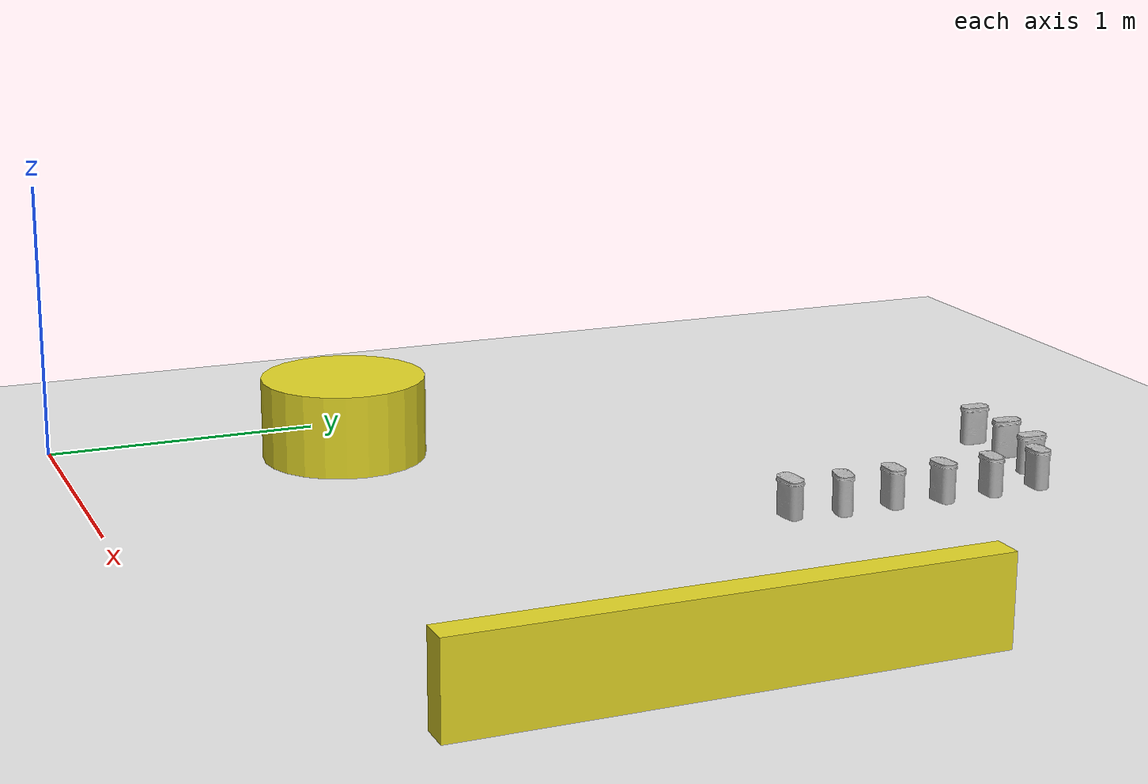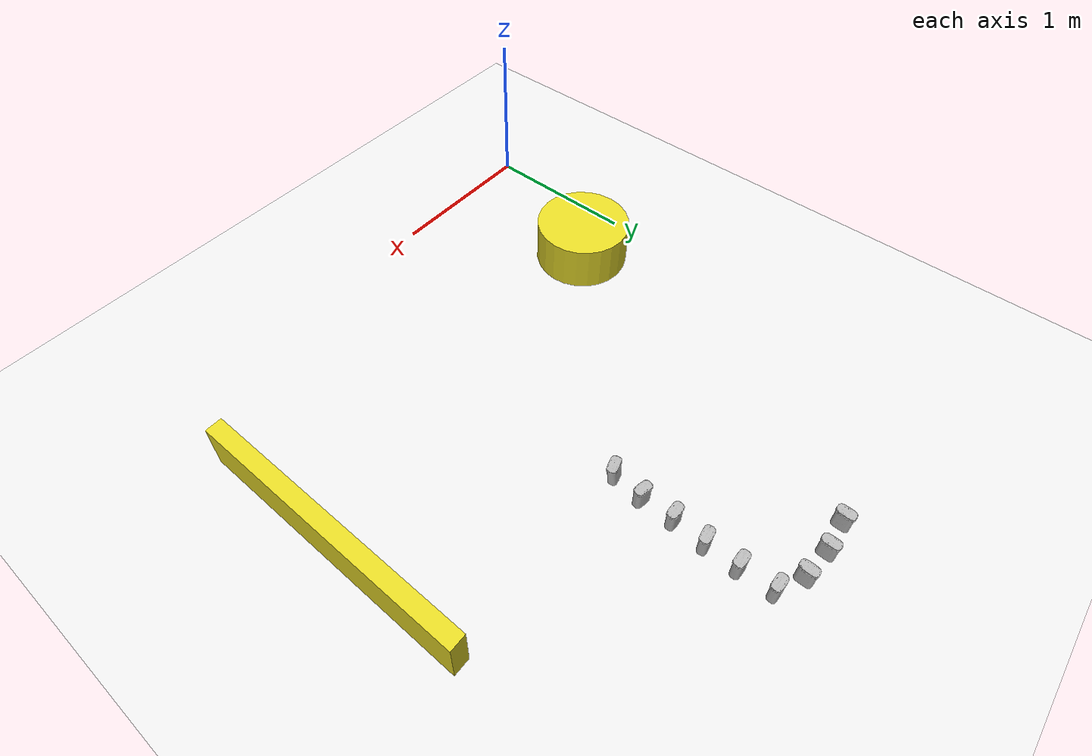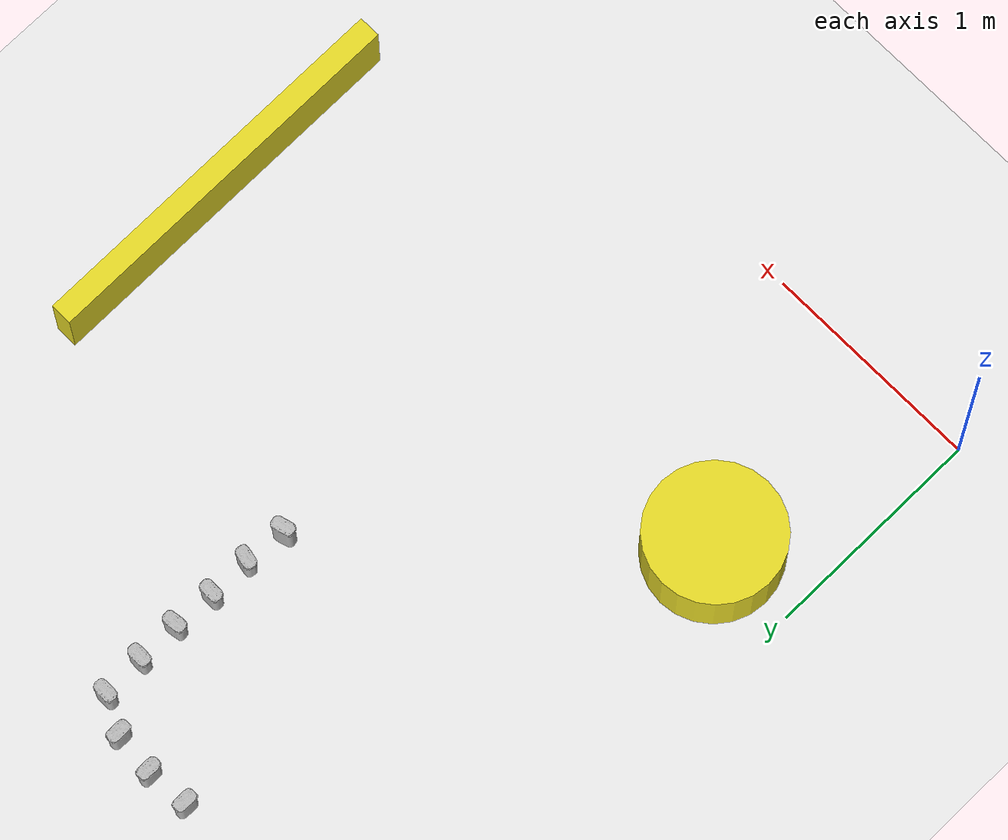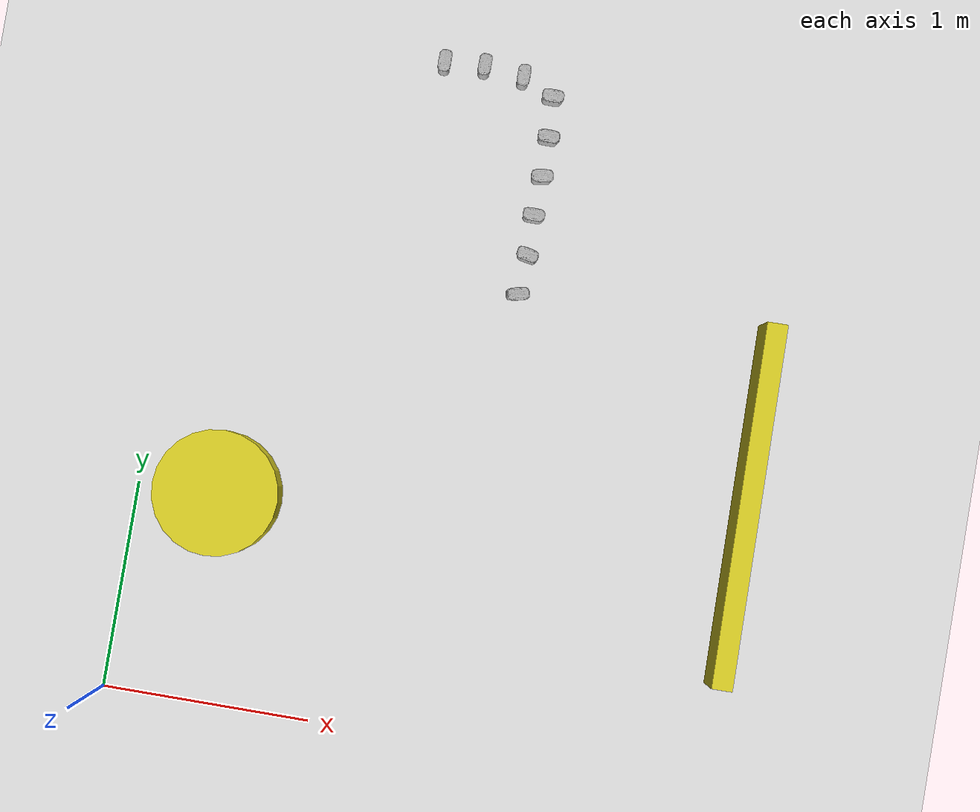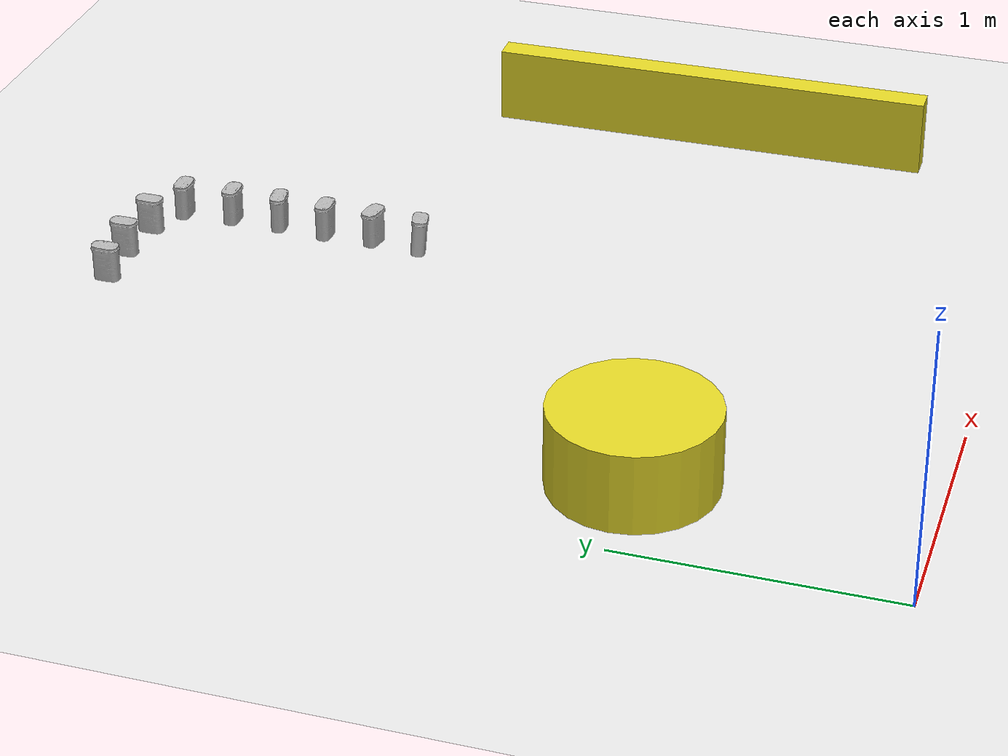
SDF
<sdf version="1.7">
 <world name="default">
  <model name="ground_plane">
   <static>1</static>
   <link name="link">
    <collision name="collision">
     <geometry><plane><normal>0 0 1</normal><size>20 20</size></plane></geometry>
     <surface>
      <contact><collide_bitmask>65535</collide_bitmask></contact>
      <friction><ode><mu>100</mu><mu2>50</mu2></ode></friction>
     </surface>
    </collision>
    <visual name="visual">
     <cast_shadows>0</cast_shadows>
     <geometry><plane><normal>0 0 1</normal><size>20 20</size></plane></geometry>
     <material>
      <script><uri>file://media/materials/scripts/gazebo.material</uri><name>Gazebo/White</name></script>
     </material>
    </visual>
   </link>
  </model>
  <gravity>0 0 -9.8</gravity>
  <magnetic_field>6e-06 2.3e-05 -4.2e-05</magnetic_field>
  <atmosphere type="adiabatic"/>
  <physics type="ode">
   <max_step_size>0.001</max_step_size>
   <real_time_factor>1</real_time_factor>
   <real_time_update_rate>1000</real_time_update_rate>
  </physics>
  <scene><ambient>0.4 0.4 0.4 1</ambient><background>0.7 0.7 0.7 1</background><shadows>1</shadows></scene>
  <spherical_coordinates>
   <surface_model>EARTH_WGS84</surface_model>
   <latitude_deg>0</latitude_deg>
   <longitude_deg>0</longitude_deg>
   <elevation>0</elevation>
   <heading_deg>0</heading_deg>
  </spherical_coordinates>
  <light name="sun" type="directional">
   <pose>13.0104 0.905764 10 0 -0 0</pose>
   <diffuse>0.8 0.8 0.8 1</diffuse>
   <specular>0.2 0.2 0.2 1</specular>
   <attenuation>
    <range>1000</range>
    <constant>0.9</constant>
    <linear>0.01</linear>
    <quadratic>0.001</quadratic>
   </attenuation>
   <direction>-0.5 0.1 -0.9</direction>
   <spot><inner_angle>0</inner_angle><outer_angle>0</outer_angle><falloff>0</falloff></spot>
  </light>
  <model name="unit_box">
   <pose>2.9 1.36976 0.14999 -1.4e-05 0 0.008151</pose>
   <link name="link">
    <inertial>
     <mass>10</mass>
     <inertia><ixx>1.66667</ixx><ixy>0</ixy><ixz>0</ixz><iyy>1.66667</iyy><iyz>0</iyz><izz>1.66667</izz></inertia>
    </inertial>
    <collision name="collision"><geometry><box><size>0.1 1.4 0.3</size></box></geometry></collision>
    <visual name="visual">
     <geometry><box><size>0.1 1.75 0.3</size></box></geometry>
     <material>
      <script><name>Gazebo/DarkYellow</name><uri>file://media/materials/scripts/gazebo.material</uri></script>
     </material>
    </visual>
   </link>
  </model>
  <model name="unit_cylinder">
   <pose>0.4 1.01492 0.15 0 -0 0</pose>
   <link name="link">
    <inertial>
     <mass>10</mass>
     <inertia><ixx>0.145833</ixx><ixy>0</ixy><ixz>0</ixz><iyy>0.145833</iyy><iyz>0</iyz><izz>0.125</izz></inertia>
    </inertial>
    <collision name="collision">
     <geometry><cylinder><radius>0.3</radius><length>0.3</length></cylinder></geometry>
    </collision>
    <visual name="visual">
     <geometry><cylinder><radius>0.3</radius><length>0.3</length></cylinder></geometry>
     <material>
      <script><name>Gazebo/DarkYellow</name><uri>file://media/materials/scripts/gazebo.material</uri></script>
     </material>
    </visual>
   </link>
  </model>
  <model name="Transformers_Age_of_Extinction_Mega_1Step_Bumblebee_Figure">
   <link name="link_0">
    <visual name="visual">
     <geometry>
      <mesh>
       <uri>/home/jstm/.ignition/fuel/fuel.gazebosim.org/johnny/models/transformers_age_of_extinction_mega_1step_bumblebee_figure 1/1/meshes/model.obj</uri>
      </mesh>
     </geometry>
    </visual>
    <collision name="collision_0">
     <geometry>
      <mesh>
       <uri>/home/jstm/.ignition/fuel/fuel.gazebosim.org/johnny/models/transformers_age_of_extinction_mega_1step_bumblebee_figure 1/1/meshes/model.obj</uri>
      </mesh>
     </geometry>
    </collision>
    <inertial>
     <inertia><ixx>1</ixx><ixy>0</ixy><ixz>0</ixz><iyy>1</iyy><iyz>0</iyz><izz>1</izz></inertia>
     <mass>1</mass>
    </inertial>
   </link>
   <pose>1.68213 2.97284 -0.00062 0.000766 -0.011733 1.5706</pose>
  </model>
  <model name="Transformers_Age_of_Extinction_Mega_1Step_Bumblebee_Figure_clone">
   <link name="link_0">
    <visual name="visual">
     <geometry>
      <mesh>
       <uri>/home/jstm/.ignition/fuel/fuel.gazebosim.org/johnny/models/transformers_age_of_extinction_mega_1step_bumblebee_figure 1/1/meshes/model.obj</uri>
      </mesh>
     </geometry>
    </visual>
    <collision name="collision_0">
     <geometry>
      <mesh>
       <uri>/home/jstm/.ignition/fuel/fuel.gazebosim.org/johnny/models/transformers_age_of_extinction_mega_1step_bumblebee_figure 1/1/meshes/model.obj</uri>
      </mesh>
     </geometry>
    </collision>
    <inertial>
     <inertia><ixx>1</ixx><ixy>0</ixy><ixz>0</ixz><iyy>1</iyy><iyz>0</iyz><izz>1</izz></inertia>
     <mass>1</mass>
    </inertial>
   </link>
   <pose>1.67023 3.16971 -0.00061 0.00076 -0.011734 1.57102</pose>
  </model>
  <model name="Transformers_Age_of_Extinction_Mega_1Step_Bumblebee_Figure_clone_0">
   <link name="link_0">
    <visual name="visual">
     <geometry>
      <mesh>
       <uri>/home/jstm/.ignition/fuel/fuel.gazebosim.org/johnny/models/transformers_age_of_extinction_mega_1step_bumblebee_figure 1/1/meshes/model.obj</uri>
      </mesh>
     </geometry>
    </visual>
    <collision name="collision_0">
     <geometry>
      <mesh>
       <uri>/home/jstm/.ignition/fuel/fuel.gazebosim.org/johnny/models/transformers_age_of_extinction_mega_1step_bumblebee_figure 1/1/meshes/model.obj</uri>
      </mesh>
     </geometry>
    </collision>
    <inertial>
     <inertia><ixx>1</ixx><ixy>0</ixy><ixz>0</ixz><iyy>1</iyy><iyz>0</iyz><izz>1</izz></inertia>
     <mass>1</mass>
    </inertial>
   </link>
   <pose>1.68231 2.77871 -0.00061 0.000763 -0.011736 1.71268</pose>
  </model>
  <model name="Transformers_Age_of_Extinction_Mega_1Step_Bumblebee_Figure_clone_0_clone">
   <link name="link_0">
    <visual name="visual">
     <geometry>
      <mesh>
       <uri>/home/jstm/.ignition/fuel/fuel.gazebosim.org/johnny/models/transformers_age_of_extinction_mega_1step_bumblebee_figure 1/1/meshes/model.obj</uri>
      </mesh>
     </geometry>
    </visual>
    <collision name="collision_0">
     <geometry>
      <mesh>
       <uri>/home/jstm/.ignition/fuel/fuel.gazebosim.org/johnny/models/transformers_age_of_extinction_mega_1step_bumblebee_figure 1/1/meshes/model.obj</uri>
      </mesh>
     </geometry>
    </collision>
    <inertial>
     <inertia><ixx>1</ixx><ixy>0</ixy><ixz>0</ixz><iyy>1</iyy><iyz>0</iyz><izz>1</izz></inertia>
     <mass>1</mass>
    </inertial>
   </link>
   <pose>1.31879 3.26482 -0.00061 0.000754 -0.011733 3.14116</pose>
  </model>
  <model name="Transformers_Age_of_Extinction_Mega_1Step_Bumblebee_Figure_clone_0_clone_clone">
   <link name="link_0">
    <visual name="visual">
     <geometry>
      <mesh>
       <uri>/home/jstm/.ignition/fuel/fuel.gazebosim.org/johnny/models/transformers_age_of_extinction_mega_1step_bumblebee_figure 1/1/meshes/model.obj</uri>
      </mesh>
     </geometry>
    </visual>
    <collision name="collision_0">
     <geometry>
      <mesh>
       <uri>/home/jstm/.ignition/fuel/fuel.gazebosim.org/johnny/models/transformers_age_of_extinction_mega_1step_bumblebee_figure 1/1/meshes/model.obj</uri>
      </mesh>
     </geometry>
    </collision>
    <inertial>
     <inertia><ixx>1</ixx><ixy>0</ixy><ixz>0</ixz><iyy>1</iyy><iyz>0</iyz><izz>1</izz></inertia>
     <mass>1</mass>
    </inertial>
   </link>
   <pose>1.12441 3.25154 -0.00061 0.000763 -0.011735 3.14116</pose>
  </model>
  <model name="Transformers_Age_of_Extinction_Mega_1Step_Bumblebee_Figure_clone_0_clone_clone_0">
   <link name="link_0">
    <visual name="visual">
     <geometry>
      <mesh>
       <uri>/home/jstm/.ignition/fuel/fuel.gazebosim.org/johnny/models/transformers_age_of_extinction_mega_1step_bumblebee_figure 1/1/meshes/model.obj</uri>
      </mesh>
     </geometry>
    </visual>
    <collision name="collision_0">
     <geometry>
      <mesh>
       <uri>/home/jstm/.ignition/fuel/fuel.gazebosim.org/johnny/models/transformers_age_of_extinction_mega_1step_bumblebee_figure 1/1/meshes/model.obj</uri>
      </mesh>
     </geometry>
    </collision>
    <inertial>
     <inertia><ixx>1</ixx><ixy>0</ixy><ixz>0</ixz><iyy>1</iyy><iyz>0</iyz><izz>1</izz></inertia>
     <mass>1</mass>
    </inertial>
   </link>
   <pose>1.51298 3.24484 -0.000613 0.000762 -0.011735 3.14116</pose>
  </model>
  <model name="Transformers_Age_of_Extinction_Mega_1Step_Bumblebee_Figure_clone_0_clone_0">
   <link name="link_0">
    <visual name="visual">
     <geometry>
      <mesh>
       <uri>/home/jstm/.ignition/fuel/fuel.gazebosim.org/johnny/models/transformers_age_of_extinction_mega_1step_bumblebee_figure 1/1/meshes/model.obj</uri>
      </mesh>
     </geometry>
    </visual>
    <collision name="collision_0">
     <geometry>
      <mesh>
       <uri>/home/jstm/.ignition/fuel/fuel.gazebosim.org/johnny/models/transformers_age_of_extinction_mega_1step_bumblebee_figure 1/1/meshes/model.obj</uri>
      </mesh>
     </geometry>
    </collision>
    <inertial>
     <inertia><ixx>1</ixx><ixy>0</ixy><ixz>0</ixz><iyy>1</iyy><iyz>0</iyz><izz>1</izz></inertia>
     <mass>1</mass>
    </inertial>
   </link>
   <pose>1.67257 2.58626 -0.000586 0.002885 -0.011724 1.56706</pose>
  </model>
  <model name="Transformers_Age_of_Extinction_Mega_1Step_Bumblebee_Figure_clone_0_clone_0_clone">
   <link name="link_0">
    <visual name="visual">
     <geometry>
      <mesh>
       <uri>/home/jstm/.ignition/fuel/fuel.gazebosim.org/johnny/models/transformers_age_of_extinction_mega_1step_bumblebee_figure 1/1/meshes/model.obj</uri>
      </mesh>
     </geometry>
    </visual>
    <collision name="collision_0">
     <geometry>
      <mesh>
       <uri>/home/jstm/.ignition/fuel/fuel.gazebosim.org/johnny/models/transformers_age_of_extinction_mega_1step_bumblebee_figure 1/1/meshes/model.obj</uri>
      </mesh>
     </geometry>
    </collision>
    <inertial>
     <inertia><ixx>1</ixx><ixy>0</ixy><ixz>0</ixz><iyy>1</iyy><iyz>0</iyz><izz>1</izz></inertia>
     <mass>1</mass>
    </inertial>
   </link>
   <pose>1.67696 2.39047 -0.000355 -0.013493 -0.010441 1.36713</pose>
  </model>
  <model name="Transformers_Age_of_Extinction_Mega_1Step_Bumblebee_Figure_clone_0_clone_0_clone_clone">
   <link name="link_0">
    <visual name="visual">
     <geometry>
      <mesh>
       <uri>/home/jstm/.ignition/fuel/fuel.gazebosim.org/johnny/models/transformers_age_of_extinction_mega_1step_bumblebee_figure 1/1/meshes/model.obj</uri>
      </mesh>
     </geometry>
    </visual>
    <collision name="collision_0">
     <geometry>
      <mesh>
       <uri>/home/jstm/.ignition/fuel/fuel.gazebosim.org/johnny/models/transformers_age_of_extinction_mega_1step_bumblebee_figure 1/1/meshes/model.obj</uri>
      </mesh>
     </geometry>
    </collision>
    <inertial>
     <inertia><ixx>1</ixx><ixy>0</ixy><ixz>0</ixz><iyy>1</iyy><iyz>0</iyz><izz>1</izz></inertia>
     <mass>1</mass>
    </inertial>
   </link>
   <pose>1.65132 2.20259 0.004216 0.064219 -0.075251 1.81317</pose>
  </model>
 </world>
</sdf>
